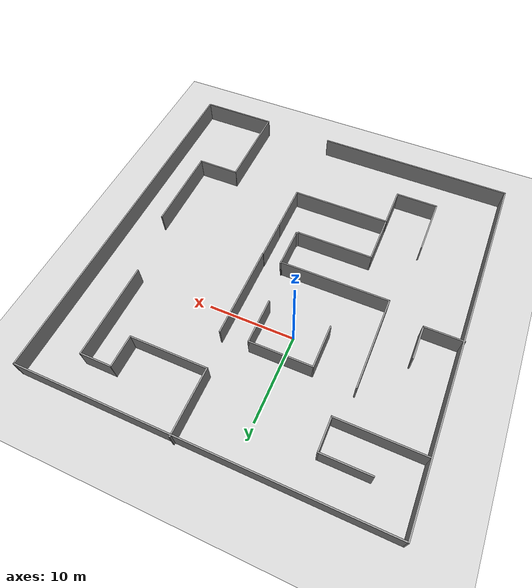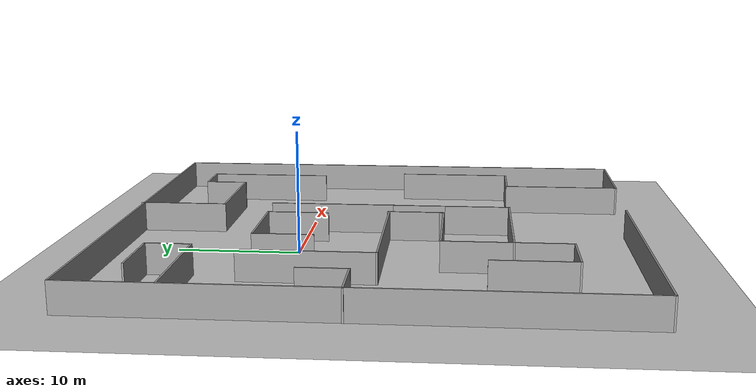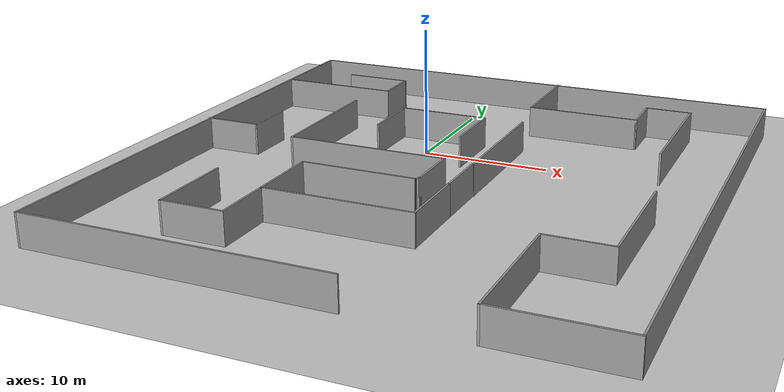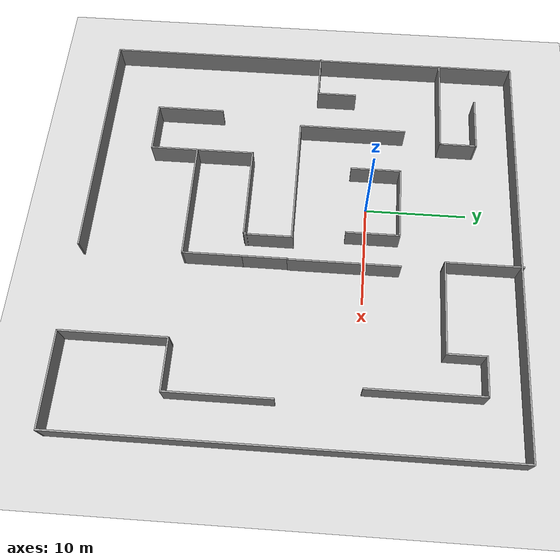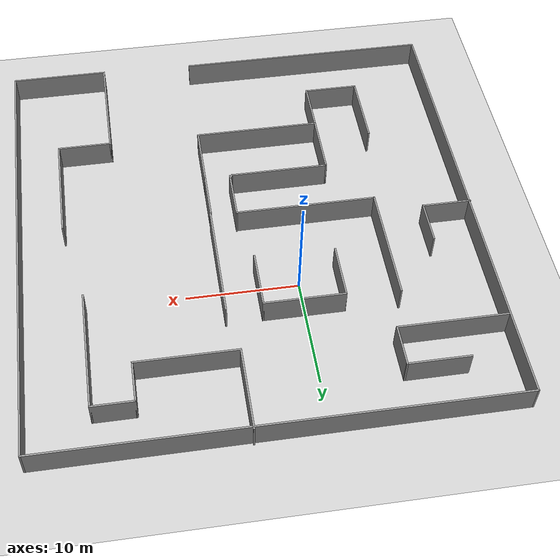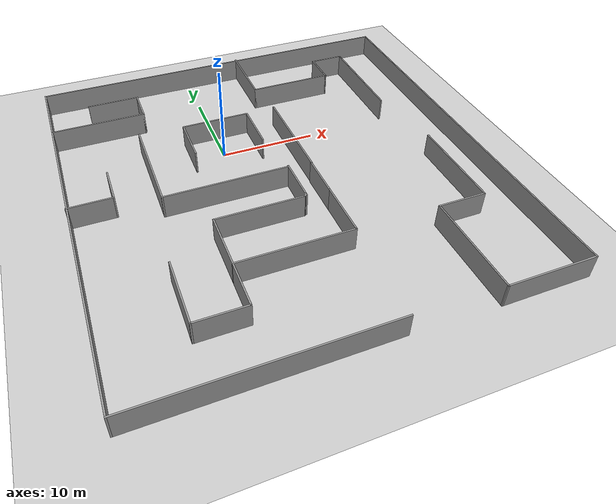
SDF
<sdf version="1.6">
 <world name="default">
  <light name="sun" type="directional">
   <pose>0 0 10 0 -0 0</pose>
   <diffuse>0.8 0.8 0.8 1</diffuse>
   <specular>0.2 0.2 0.2 1</specular>
   <attenuation>
    <range>1000</range>
    <constant>0.9</constant>
    <linear>0.01</linear>
    <quadratic>0.001</quadratic>
   </attenuation>
   <direction>-0.5 0.1 -0.9</direction>
  </light>
  <model name="ground_plane">
   <static>1</static>
   <link name="link">
    <collision name="collision">
     <geometry><plane><normal>0 0 1</normal><size>100 100</size></plane></geometry>
     <surface>
      <contact><collide_bitmask>65535</collide_bitmask></contact>
      <friction><ode><mu>100</mu><mu2>50</mu2></ode></friction>
     </surface>
    </collision>
    <visual name="visual">
     <cast_shadows>0</cast_shadows>
     <geometry><plane><normal>0 0 1</normal><size>100 100</size></plane></geometry>
     <material>
      <script><uri>file://media/materials/scripts/gazebo.material</uri><name>Gazebo/Grey</name></script>
     </material>
    </visual>
   </link>
  </model>
  <gravity>0 0 -9.8</gravity>
  <magnetic_field>6e-06 2.3e-05 -4.2e-05</magnetic_field>
  <atmosphere type="adiabatic"/>
  <physics name="default_physics" default="0" type="ode">
   <max_step_size>0.001</max_step_size>
   <real_time_factor>1</real_time_factor>
   <real_time_update_rate>1000</real_time_update_rate>
  </physics>
  <scene><ambient>0.4 0.4 0.4 1</ambient><background>0.7 0.7 0.7 1</background><shadows>1</shadows></scene>
  <audio><device>default</device></audio>
  <spherical_coordinates>
   <surface_model>EARTH_WGS84</surface_model>
   <latitude_deg>0</latitude_deg>
   <longitude_deg>0</longitude_deg>
   <elevation>0</elevation>
   <heading_deg>0</heading_deg>
  </spherical_coordinates>
  <model name="another_thing">
   <pose>3.73339 -6.30084 0 0 -0 0</pose>
   <link name="Wall_10">
    <collision name="Wall_10_Collision">
     <geometry><box><size>4.5 0.15 2.5</size></box></geometry>
     <pose>0 0 1.25 0 -0 0</pose>
    </collision>
    <visual name="Wall_10_Visual">
     <pose>0 0 1.25 0 -0 0</pose>
     <geometry><box><size>4.5 0.15 2.5</size></box></geometry>
     <material>
      <script><uri>file://media/materials/scripts/gazebo.material</uri><name>Gazebo/Grey</name></script>
      <ambient>1 1 1 1</ambient>
     </material>
     <meta><layer>0</layer></meta>
    </visual>
    <pose>3.10284 -3.18709 0 0 -0 -1.5708</pose>
   </link>
   <link name="Wall_14">
    <collision name="Wall_14_Collision">
     <geometry><box><size>5.75 0.15 2.5</size></box></geometry>
     <pose>0 0 1.25 0 -0 0</pose>
    </collision>
    <visual name="Wall_14_Visual">
     <pose>0 0 1.25 0 -0 0</pose>
     <geometry><box><size>5.75 0.15 2.5</size></box></geometry>
     <material>
      <script><uri>file://media/materials/scripts/gazebo.material</uri><name>Gazebo/Grey</name></script>
      <ambient>1 1 1 1</ambient>
     </material>
     <meta><layer>0</layer></meta>
    </visual>
    <pose>3.10284 -8.16209 0 0 -0 -1.5708</pose>
   </link>
   <link name="Wall_15">
    <collision name="Wall_15_Collision">
     <geometry><box><size>11.5 0.15 2.5</size></box></geometry>
     <pose>0 0 1.25 0 -0 0</pose>
    </collision>
    <visual name="Wall_15_Visual">
     <pose>0 0 1.25 0 -0 0</pose>
     <geometry><box><size>11.5 0.15 2.5</size></box></geometry>
     <material>
      <script><uri>file://media/materials/scripts/gazebo.material</uri><name>Gazebo/Grey</name></script>
      <ambient>1 1 1 1</ambient>
     </material>
     <meta><layer>0</layer></meta>
    </visual>
    <pose>-2.57216 -10.9621 0 0 -0 3.14159</pose>
   </link>
   <link name="Wall_16">
    <collision name="Wall_16_Collision">
     <geometry><box><size>5.75 0.15 2.5</size></box></geometry>
     <pose>0 0 1.25 0 -0 0</pose>
    </collision>
    <visual name="Wall_16_Visual">
     <pose>0 0 1.25 0 -0 0</pose>
     <geometry><box><size>5.75 0.15 2.5</size></box></geometry>
     <material>
      <script><uri>file://media/materials/scripts/gazebo.material</uri><name>Gazebo/Grey</name></script>
      <ambient>1 1 1 1</ambient>
     </material>
     <meta><layer>0</layer></meta>
    </visual>
    <pose>-8.24716 -8.16209 0 0 -0 1.5708</pose>
   </link>
   <link name="Wall_17">
    <collision name="Wall_17_Collision">
     <geometry><box><size>9 0.15 2.5</size></box></geometry>
     <pose>0 0 1.25 0 -0 0</pose>
    </collision>
    <visual name="Wall_17_Visual">
     <pose>0 0 1.25 0 -0 0</pose>
     <geometry><box><size>9 0.15 2.5</size></box></geometry>
     <material>
      <script><uri>file://media/materials/scripts/gazebo.material</uri><name>Gazebo/Grey</name></script>
      <ambient>1 1 1 1</ambient>
     </material>
     <meta><layer>0</layer></meta>
    </visual>
    <pose>-3.82216 -5.36209 0 0 -0 0</pose>
   </link>
   <link name="Wall_18">
    <collision name="Wall_18_Collision">
     <geometry><box><size>0.5 0.15 2.5</size></box></geometry>
     <pose>0 0 1.25 0 -0 0</pose>
    </collision>
    <visual name="Wall_18_Visual">
     <pose>0 0 1.25 0 -0 0</pose>
     <geometry><box><size>0.5 0.15 2.5</size></box></geometry>
     <material>
      <script><uri>file://media/materials/scripts/gazebo.material</uri><name>Gazebo/Grey</name></script>
      <ambient>1 1 1 1</ambient>
     </material>
     <meta><layer>0</layer></meta>
    </visual>
    <pose>0.69034 -5.21054 0 0 -0 1.0472</pose>
   </link>
   <link name="Wall_20">
    <collision name="Wall_20_Collision">
     <geometry><box><size>23.25 0.15 2.5</size></box></geometry>
     <pose>0 0 1.25 0 -0 0</pose>
    </collision>
    <visual name="Wall_20_Visual">
     <pose>0 0 1.25 0 -0 0</pose>
     <geometry><box><size>23.25 0.15 2.5</size></box></geometry>
     <material>
      <script><uri>file://media/materials/scripts/gazebo.material</uri><name>Gazebo/Grey</name></script>
      <ambient>1 1 1 1</ambient>
     </material>
     <meta><layer>0</layer></meta>
    </visual>
    <pose>-8.7081 -20.8961 0 0 -0 3.14159</pose>
   </link>
   <link name="Wall_21">
    <collision name="Wall_21_Collision">
     <geometry><box><size>42 0.15 2.5</size></box></geometry>
     <pose>0 0 1.25 0 -0 0</pose>
    </collision>
    <visual name="Wall_21_Visual">
     <pose>0 0 1.25 0 -0 0</pose>
     <geometry><box><size>42 0.15 2.5</size></box></geometry>
     <material>
      <script><uri>file://media/materials/scripts/gazebo.material</uri><name>Gazebo/Grey</name></script>
      <ambient>1 1 1 1</ambient>
     </material>
     <meta><layer>0</layer></meta>
    </visual>
    <pose>-20.2581 0.028912 0 0 -0 1.5708</pose>
   </link>
   <link name="Wall_22">
    <collision name="Wall_22_Collision">
     <geometry><box><size>40.75 0.15 2.5</size></box></geometry>
     <pose>0 0 1.25 0 -0 0</pose>
    </collision>
    <visual name="Wall_22_Visual">
     <pose>0 0 1.25 0 -0 0</pose>
     <geometry><box><size>40.75 0.15 2.5</size></box></geometry>
     <material>
      <script><uri>file://media/materials/scripts/gazebo.material</uri><name>Gazebo/Grey</name></script>
      <ambient>1 1 1 1</ambient>
     </material>
     <meta><layer>0</layer></meta>
    </visual>
    <pose>0.041901 20.9539 0 0 -0 0</pose>
   </link>
   <link name="Wall_23">
    <collision name="Wall_23_Collision">
     <geometry><box><size>42.25 0.15 2.5</size></box></geometry>
     <pose>0 0 1.25 0 -0 0</pose>
    </collision>
    <visual name="Wall_23_Visual">
     <pose>0 0 1.25 0 -0 0</pose>
     <geometry><box><size>42.25 0.15 2.5</size></box></geometry>
     <material>
      <script><uri>file://media/materials/scripts/gazebo.material</uri><name>Gazebo/Grey</name></script>
      <ambient>1 1 1 1</ambient>
     </material>
     <meta><layer>0</layer></meta>
    </visual>
    <pose>20.3419 -0.096088 0 0 -0 -1.5708</pose>
   </link>
   <link name="Wall_24">
    <collision name="Wall_24_Collision">
     <geometry><box><size>9 0.15 2.5</size></box></geometry>
     <pose>0 0 1.25 0 -0 0</pose>
    </collision>
    <visual name="Wall_24_Visual">
     <pose>0 0 1.25 0 -0 0</pose>
     <geometry><box><size>9 0.15 2.5</size></box></geometry>
     <material>
      <script><uri>file://media/materials/scripts/gazebo.material</uri><name>Gazebo/Grey</name></script>
      <ambient>1 1 1 1</ambient>
     </material>
     <meta><layer>0</layer></meta>
    </visual>
    <pose>15.9169 -21.1461 0 0 -0 3.14159</pose>
   </link>
   <link name="Wall_25">
    <collision name="Wall_25_Collision">
     <geometry><box><size>10.25 0.15 2.5</size></box></geometry>
     <pose>0 0 1.25 0 -0 0</pose>
    </collision>
    <visual name="Wall_25_Visual">
     <pose>0 0 1.25 0 -0 0</pose>
     <geometry><box><size>10.25 0.15 2.5</size></box></geometry>
     <material>
      <script><uri>file://media/materials/scripts/gazebo.material</uri><name>Gazebo/Grey</name></script>
      <ambient>1 1 1 1</ambient>
     </material>
     <meta><layer>0</layer></meta>
    </visual>
    <pose>11.4919 -16.0961 0 0 -0 1.5708</pose>
   </link>
   <link name="Wall_26">
    <collision name="Wall_26_Collision">
     <geometry><box><size>5 0.15 2.5</size></box></geometry>
     <pose>0 0 1.25 0 -0 0</pose>
    </collision>
    <visual name="Wall_26_Visual">
     <pose>0 0 1.25 0 -0 0</pose>
     <geometry><box><size>5 0.15 2.5</size></box></geometry>
     <material>
      <script><uri>file://media/materials/scripts/gazebo.material</uri><name>Gazebo/Grey</name></script>
      <ambient>1 1 1 1</ambient>
     </material>
     <meta><layer>0</layer></meta>
    </visual>
    <pose>13.9169 -11.0461 0 0 -0 0</pose>
   </link>
   <link name="Wall_27">
    <collision name="Wall_27_Collision">
     <geometry><box><size>10 0.15 2.5</size></box></geometry>
     <pose>0 0 1.25 0 -0 0</pose>
    </collision>
    <visual name="Wall_27_Visual">
     <pose>0 0 1.25 0 -0 0</pose>
     <geometry><box><size>10 0.15 2.5</size></box></geometry>
     <material>
      <script><uri>file://media/materials/scripts/gazebo.material</uri><name>Gazebo/Grey</name></script>
      <ambient>1 1 1 1</ambient>
     </material>
     <meta><layer>0</layer></meta>
    </visual>
    <pose>16.3419 -6.12109 0 0 -0 1.5708</pose>
   </link>
   <link name="Wall_29">
    <collision name="Wall_29_Collision">
     <geometry><box><size>9.75 0.15 2.5</size></box></geometry>
     <pose>0 0 1.25 0 -0 0</pose>
    </collision>
    <visual name="Wall_29_Visual">
     <pose>0 0 1.25 0 -0 0</pose>
     <geometry><box><size>9.75 0.15 2.5</size></box></geometry>
     <material>
      <script><uri>file://media/materials/scripts/gazebo.material</uri><name>Gazebo/Grey</name></script>
      <ambient>1 1 1 1</ambient>
     </material>
     <meta><layer>0</layer></meta>
    </visual>
    <pose>-15.3932 13.4677 0 0 -0 0</pose>
   </link>
   <link name="Wall_30">
    <collision name="Wall_30_Collision">
     <geometry><box><size>3.75 0.15 2.5</size></box></geometry>
     <pose>0 0 1.25 0 -0 0</pose>
    </collision>
    <visual name="Wall_30_Visual">
     <pose>0 0 1.25 0 -0 0</pose>
     <geometry><box><size>3.75 0.15 2.5</size></box></geometry>
     <material>
      <script><uri>file://media/materials/scripts/gazebo.material</uri><name>Gazebo/Grey</name></script>
      <ambient>1 1 1 1</ambient>
     </material>
     <meta><layer>0</layer></meta>
    </visual>
    <pose>-10.5932 15.2677 0 0 -0 1.5708</pose>
   </link>
   <link name="Wall_31">
    <collision name="Wall_31_Collision">
     <geometry><box><size>5.5 0.15 2.5</size></box></geometry>
     <pose>0 0 1.25 0 -0 0</pose>
    </collision>
    <visual name="Wall_31_Visual">
     <pose>0 0 1.25 0 -0 0</pose>
     <geometry><box><size>5.5 0.15 2.5</size></box></geometry>
     <material>
      <script><uri>file://media/materials/scripts/gazebo.material</uri><name>Gazebo/Grey</name></script>
      <ambient>1 1 1 1</ambient>
     </material>
     <meta><layer>0</layer></meta>
    </visual>
    <pose>-13.2682 17.0677 0 0 -0 3.14159</pose>
   </link>
   <link name="Wall_33">
    <collision name="Wall_33_Collision">
     <geometry><box><size>7.5 0.15 2.5</size></box></geometry>
     <pose>0 0 1.25 0 -0 0</pose>
    </collision>
    <visual name="Wall_33_Visual">
     <pose>0 0 1.25 0 -0 0</pose>
     <geometry><box><size>7.5 0.15 2.5</size></box></geometry>
     <material>
      <script><uri>file://media/materials/scripts/gazebo.material</uri><name>Gazebo/Grey</name></script>
      <ambient>1 1 1 1</ambient>
     </material>
     <meta><layer>0</layer></meta>
    </visual>
    <pose>2.46428 17.4711 0 0 -0 -1.5708</pose>
   </link>
   <link name="Wall_34">
    <collision name="Wall_34_Collision">
     <geometry><box><size>9 0.15 2.5</size></box></geometry>
     <pose>0 0 1.25 0 -0 0</pose>
    </collision>
    <visual name="Wall_34_Visual">
     <pose>0 0 1.25 0 -0 0</pose>
     <geometry><box><size>9 0.15 2.5</size></box></geometry>
     <material>
      <script><uri>file://media/materials/scripts/gazebo.material</uri><name>Gazebo/Grey</name></script>
      <ambient>1 1 1 1</ambient>
     </material>
     <meta><layer>0</layer></meta>
    </visual>
    <pose>6.88928 13.7961 0 0 -0 0</pose>
   </link>
   <link name="Wall_38">
    <collision name="Wall_38_Collision">
     <geometry><box><size>3.75 0.15 2.5</size></box></geometry>
     <pose>0 0 1.25 0 -0 0</pose>
    </collision>
    <visual name="Wall_38_Visual">
     <pose>0 0 1.25 0 -0 0</pose>
     <geometry><box><size>3.75 0.15 2.5</size></box></geometry>
     <material>
      <script><uri>file://media/materials/scripts/gazebo.material</uri><name>Gazebo/Grey</name></script>
      <ambient>1 1 1 1</ambient>
     </material>
     <meta><layer>0</layer></meta>
    </visual>
    <pose>11.3143 15.5961 0 0 -0 1.5708</pose>
   </link>
   <link name="Wall_39">
    <collision name="Wall_39_Collision">
     <geometry><box><size>3.75 0.15 2.5</size></box></geometry>
     <pose>0 0 1.25 0 -0 0</pose>
    </collision>
    <visual name="Wall_39_Visual">
     <pose>0 0 1.25 0 -0 0</pose>
     <geometry><box><size>3.75 0.15 2.5</size></box></geometry>
     <material>
      <script><uri>file://media/materials/scripts/gazebo.material</uri><name>Gazebo/Grey</name></script>
      <ambient>1 1 1 1</ambient>
     </material>
     <meta><layer>0</layer></meta>
    </visual>
    <pose>13.1143 17.3961 0 0 -0 0</pose>
   </link>
   <link name="Wall_40">
    <collision name="Wall_40_Collision">
     <geometry><box><size>11 0.15 2.5</size></box></geometry>
     <pose>0 0 1.25 0 -0 0</pose>
    </collision>
    <visual name="Wall_40_Visual">
     <pose>0 0 1.25 0 -0 0</pose>
     <geometry><box><size>11 0.15 2.5</size></box></geometry>
     <material>
      <script><uri>file://media/materials/scripts/gazebo.material</uri><name>Gazebo/Grey</name></script>
      <ambient>1 1 1 1</ambient>
     </material>
     <meta><layer>0</layer></meta>
    </visual>
    <pose>14.9143 11.9711 0 0 -0 -1.5708</pose>
   </link>
   <link name="Wall_42">
    <collision name="Wall_42_Collision">
     <geometry><box><size>4.5 0.15 2.5</size></box></geometry>
     <pose>0 0 1.25 0 -0 0</pose>
    </collision>
    <visual name="Wall_42_Visual">
     <pose>0 0 1.25 0 -0 0</pose>
     <geometry><box><size>4.5 0.15 2.5</size></box></geometry>
     <material>
      <script><uri>file://media/materials/scripts/gazebo.material</uri><name>Gazebo/Grey</name></script>
      <ambient>1 1 1 1</ambient>
     </material>
     <meta><layer>0</layer></meta>
    </visual>
    <pose>-18.1669 0.818074 0 0 -0 0</pose>
   </link>
   <link name="Wall_43">
    <collision name="Wall_43_Collision">
     <geometry><box><size>4 0.15 2.5</size></box></geometry>
     <pose>0 0 1.25 0 -0 0</pose>
    </collision>
    <visual name="Wall_43_Visual">
     <pose>0 0 1.25 0 -0 0</pose>
     <geometry><box><size>4 0.15 2.5</size></box></geometry>
     <material>
      <script><uri>file://media/materials/scripts/gazebo.material</uri><name>Gazebo/Grey</name></script>
      <ambient>1 1 1 1</ambient>
     </material>
     <meta><layer>0</layer></meta>
    </visual>
    <pose>-15.9919 2.74307 0 0 -0 1.5708</pose>
   </link>
   <link name="Wall_45">
    <collision name="Wall_45_Collision">
     <geometry><box><size>4.75 0.15 2.5</size></box></geometry>
     <pose>0 0 1.25 0 -0 0</pose>
    </collision>
    <visual name="Wall_45_Visual">
     <pose>0 0 1.25 0 -0 0</pose>
     <geometry><box><size>4.75 0.15 2.5</size></box></geometry>
     <material>
      <script><uri>file://media/materials/scripts/gazebo.material</uri><name>Gazebo/Grey</name></script>
      <ambient>1 1 1 1</ambient>
     </material>
     <meta><layer>0</layer></meta>
    </visual>
    <pose>-8.24716 -13.2621 0 0 -0 -1.5708</pose>
   </link>
   <link name="Wall_46">
    <collision name="Wall_46_Collision">
     <geometry><box><size>5 0.15 2.5</size></box></geometry>
     <pose>0 0 1.25 0 -0 0</pose>
    </collision>
    <visual name="Wall_46_Visual">
     <pose>0 0 1.25 0 -0 0</pose>
     <geometry><box><size>5 0.15 2.5</size></box></geometry>
     <material>
      <script><uri>file://media/materials/scripts/gazebo.material</uri><name>Gazebo/Grey</name></script>
      <ambient>1 1 1 1</ambient>
     </material>
     <meta><layer>0</layer></meta>
    </visual>
    <pose>-10.6722 -15.5621 0 0 -0 3.14159</pose>
   </link>
   <link name="Wall_47">
    <collision name="Wall_47_Collision">
     <geometry><box><size>6.75 0.15 2.5</size></box></geometry>
     <pose>0 0 1.25 0 -0 0</pose>
    </collision>
    <visual name="Wall_47_Visual">
     <pose>0 0 1.25 0 -0 0</pose>
     <geometry><box><size>6.75 0.15 2.5</size></box></geometry>
     <material>
      <script><uri>file://media/materials/scripts/gazebo.material</uri><name>Gazebo/Grey</name></script>
      <ambient>1 1 1 1</ambient>
     </material>
     <meta><layer>0</layer></meta>
    </visual>
    <pose>-13.0972 -12.2621 0 0 -0 1.5708</pose>
   </link>
   <link name="Wall_6">
    <collision name="Wall_6_Collision">
     <geometry><box><size>0.15 0.15 2.5</size></box></geometry>
     <pose>0 0 1.25 0 -0 0</pose>
    </collision>
    <visual name="Wall_6_Visual">
     <pose>0 0 1.25 0 -0 0</pose>
     <geometry><box><size>0.15 0.15 2.5</size></box></geometry>
     <material>
      <script><uri>file://media/materials/scripts/gazebo.material</uri><name>Gazebo/Grey</name></script>
      <ambient>1 1 1 1</ambient>
     </material>
     <meta><layer>0</layer></meta>
    </visual>
    <pose>0.79692 -0.674661 0 0 -0 0</pose>
   </link>
   <link name="Wall_8">
    <collision name="Wall_8_Collision">
     <geometry><box><size>4.75 0.15 2.5</size></box></geometry>
     <pose>0 0 1.25 0 -0 0</pose>
    </collision>
    <visual name="Wall_8_Visual">
     <pose>0 0 1.25 0 -0 0</pose>
     <geometry><box><size>4.75 0.15 2.5</size></box></geometry>
     <material>
      <script><uri>file://media/materials/scripts/gazebo.material</uri><name>Gazebo/Grey</name></script>
      <ambient>1 1 1 1</ambient>
     </material>
     <meta><layer>0</layer></meta>
    </visual>
    <pose>0.79692 -2.97466 0 0 -0 -1.5708</pose>
   </link>
   <static>1</static>
  </model>
  <model name="actual_thing">
   <pose>-0.601621 -1.86437 0 0 -0 0</pose>
   <link name="Wall_28">
    <collision name="Wall_28_Collision">
     <geometry><box><size>5 0.15 2.5</size></box></geometry>
     <pose>0 0 1.25 0 -0 0</pose>
    </collision>
    <visual name="Wall_28_Visual">
     <pose>0 0 1.25 0 -0 0</pose>
     <geometry><box><size>5 0.15 2.5</size></box></geometry>
     <material>
      <script><uri>file://media/materials/scripts/gazebo.material</uri><name>Gazebo/Grey</name></script>
      <ambient>1 1 1 1</ambient>
     </material>
     <meta><layer>0</layer></meta>
    </visual>
    <pose>-2.80695 2.63139 0 0 -0 1.5708</pose>
   </link>
   <link name="Wall_29">
    <collision name="Wall_29_Collision">
     <geometry><box><size>7.25 0.15 2.5</size></box></geometry>
     <pose>0 0 1.25 0 -0 0</pose>
    </collision>
    <visual name="Wall_29_Visual">
     <pose>0 0 1.25 0 -0 0</pose>
     <geometry><box><size>7.25 0.15 2.5</size></box></geometry>
     <material>
      <script><uri>file://media/materials/scripts/gazebo.material</uri><name>Gazebo/Grey</name></script>
      <ambient>1 1 1 1</ambient>
     </material>
     <meta><layer>0</layer></meta>
    </visual>
    <pose>0.743052 5.05639 0 0 -0 0</pose>
   </link>
   <link name="Wall_30">
    <collision name="Wall_30_Collision">
     <geometry><box><size>5.25 0.15 2.5</size></box></geometry>
     <pose>0 0 1.25 0 -0 0</pose>
    </collision>
    <visual name="Wall_30_Visual">
     <pose>0 0 1.25 0 -0 0</pose>
     <geometry><box><size>5.25 0.15 2.5</size></box></geometry>
     <material>
      <script><uri>file://media/materials/scripts/gazebo.material</uri><name>Gazebo/Grey</name></script>
      <ambient>1 1 1 1</ambient>
     </material>
     <meta><layer>0</layer></meta>
    </visual>
    <pose>4.29305 2.50639 0 0 -0 -1.5708</pose>
   </link>
   <link name="Wall_34">
    <collision name="Wall_34_Collision">
     <geometry><box><size>12.75 0.15 2.5</size></box></geometry>
     <pose>0 0 1.25 0 -0 0</pose>
    </collision>
    <visual name="Wall_34_Visual">
     <pose>0 0 1.25 0 -0 0</pose>
     <geometry><box><size>12.75 0.15 2.5</size></box></geometry>
     <material>
      <script><uri>file://media/materials/scripts/gazebo.material</uri><name>Gazebo/Grey</name></script>
      <ambient>1 1 1 1</ambient>
     </material>
     <meta><layer>0</layer></meta>
    </visual>
    <pose>-1.18458 -5.19745 0 0 -0 3.14159</pose>
   </link>
   <link name="Wall_35">
    <collision name="Wall_35_Collision">
     <geometry><box><size>10.75 0.15 2.5</size></box></geometry>
     <pose>0 0 1.25 0 -0 0</pose>
    </collision>
    <visual name="Wall_35_Visual">
     <pose>0 0 1.25 0 -0 0</pose>
     <geometry><box><size>10.75 0.15 2.5</size></box></geometry>
     <material>
      <script><uri>file://media/materials/scripts/gazebo.material</uri><name>Gazebo/Grey</name></script>
      <ambient>1 1 1 1</ambient>
     </material>
     <meta><layer>0</layer></meta>
    </visual>
    <pose>-7.48459 0.102549 0 0 -0 1.5708</pose>
   </link>
   <link name="Wall_39">
    <collision name="Wall_39_Collision">
     <geometry><box><size>10.75 0.15 2.5</size></box></geometry>
     <pose>0 0 1.25 0 -0 0</pose>
    </collision>
    <visual name="Wall_39_Visual">
     <pose>0 0 1.25 0 -0 0</pose>
     <geometry><box><size>10.75 0.15 2.5</size></box></geometry>
     <material>
      <script><uri>file://media/materials/scripts/gazebo.material</uri><name>Gazebo/Grey</name></script>
      <ambient>1 1 1 1</ambient>
     </material>
     <meta><layer>0</layer></meta>
    </visual>
    <pose>7.48459 -0.102549 0 0 -0 1.5708</pose>
   </link>
   <static>1</static>
  </model>
 </world>
</sdf>
